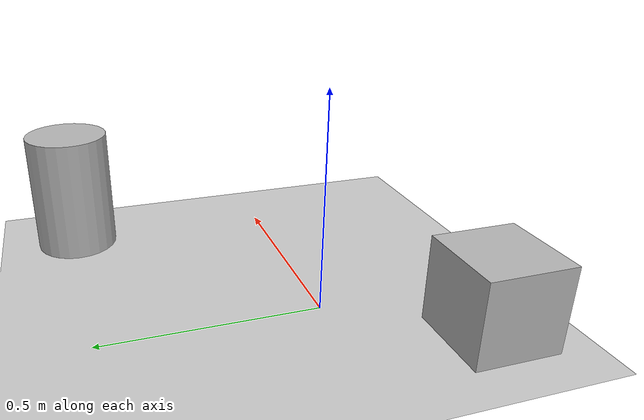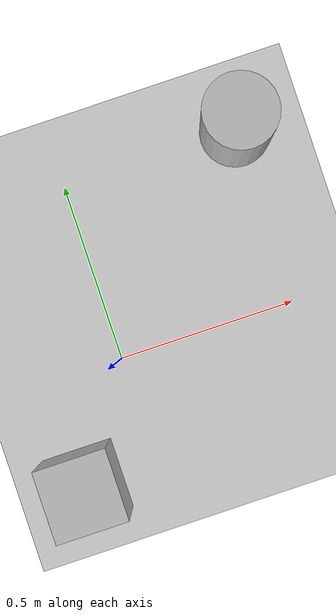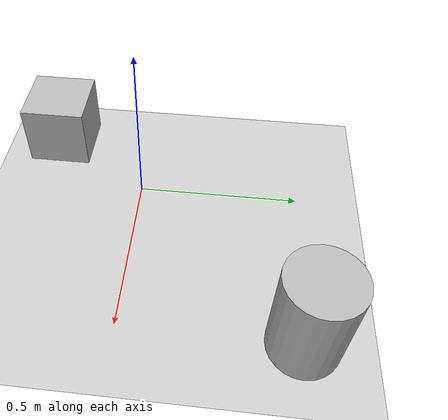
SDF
<?xml version="1.0"?>
<sdf version="1.6">
  <world name="default">
    <!-- Sun -->
    <include>
      <uri>model://sun</uri>
    </include>

    <!-- Ground plane -->
    <include>
      <uri>model://ground_plane</uri>
    </include>

    <!-- Cylinder -->
    <model name="cylinder">
      <static>false</static>
      <link name="link">
        <pose>0.5 0.5 0.15 0 0 0</pose> <!-- Raised by 0.10 from 0.15 -->
        <collision name="collision">
          <geometry>
            <cylinder>
              <radius>0.1</radius>
              <length>0.3</length>
            </cylinder>
          </geometry>
        </collision>
        <visual name="visual">
          <geometry>
            <cylinder>
              <radius>0.1</radius>
              <length>0.3</length>
            </cylinder>
          </geometry>
        </visual>
      </link>
    </model>

    <!-- Box -->
    <model name="box">
      <static>false</static>
      <link name="link">
        <pose>-0.2 -0.3 0.1 0 0 0</pose> <!-- Raised by 0.10 from 0.1 -->
        <collision name="collision">
          <geometry>
            <box>
              <size>0.2 0.2 0.2</size>
            </box>
          </geometry>
        </collision>
        <visual name="visual">
          <geometry>
            <box>
              <size>0.2 0.2 0.2</size>
            </box>
          </geometry>
        </visual>
      </link>
    </model>
  </world>
</sdf>
